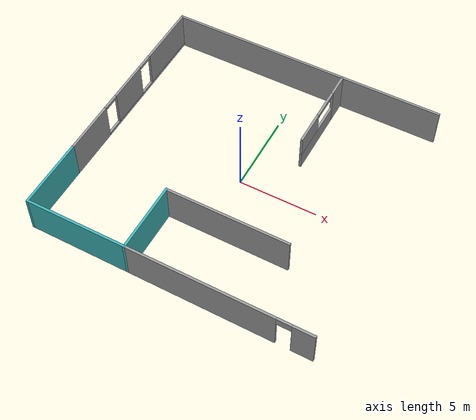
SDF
<sdf version="1.7">
 <model name="federicos_house_v2">
  <link name="Wall_12">
   <pose>3.17521 -8.42756 0 0 -0 3.14159</pose>
   <inertial>
    <mass>1</mass>
    <inertia><ixx>1</ixx><ixy>0</ixy><ixz>0</ixz><iyy>1</iyy><iyz>0</iyz><izz>1</izz></inertia>
   </inertial>
   <visual name="Wall_12_Visual_2">
    <pose>-3.94881 0 2.25 0 -0 0</pose>
    <geometry><box><size>0.9 0.15 0.5</size></box></geometry>
    <material>
     <script><uri>file://media/materials/scripts/gazebo.material</uri><name>Gazebo/Grey</name></script>
     <ambient>0.953 0.953 0.953 1</ambient>
     <shader type="pixel"><normal_map>__default__</normal_map></shader>
     <diffuse>0.7 0.7 0.7 1</diffuse>
     <specular>0.01 0.01 0.01 1</specular>
     <emissive>0 0 0 1</emissive>
    </material>
    <meta><layer>0</layer></meta>
   </visual>
   <visual name="Wall_12_Visual_1">
    <pose>1.05 0 1.25 0 -0 0</pose>
    <geometry><box><size>9.1 0.15 2.5</size></box></geometry>
    <material>
     <script><uri>file://media/materials/scripts/gazebo.material</uri><name>Gazebo/Grey</name></script>
     <ambient>0.953 0.953 0.953 1</ambient>
     <shader type="pixel"><normal_map>__default__</normal_map></shader>
     <diffuse>0.7 0.7 0.7 1</diffuse>
     <specular>0.01 0.01 0.01 1</specular>
     <emissive>0 0 0 1</emissive>
    </material>
    <meta><layer>0</layer></meta>
   </visual>
   <visual name="Wall_12_Visual_0">
    <pose>-5.0744 0 1.25 0 -0 0</pose>
    <geometry><box><size>1.35119 0.15 2.5</size></box></geometry>
    <material>
     <script><uri>file://media/materials/scripts/gazebo.material</uri><name>Gazebo/Grey</name></script>
     <ambient>0.953 0.953 0.953 1</ambient>
     <shader type="pixel"><normal_map>__default__</normal_map></shader>
     <diffuse>0.7 0.7 0.7 1</diffuse>
     <specular>0.01 0.01 0.01 1</specular>
     <emissive>0 0 0 1</emissive>
    </material>
    <meta><layer>0</layer></meta>
   </visual>
   <collision name="Wall_12_Collision_1">
    <pose>1.05 0 1.25 0 -0 0</pose>
    <geometry><box><size>9.1 0.15 2.5</size></box></geometry>
    <surface>
     <friction>
      <ode><mu>1</mu><mu2>1</mu2><fdir1>0 0 0</fdir1><slip1>0</slip1><slip2>0</slip2></ode>
      <torsional>
       <coefficient>1</coefficient>
       <patch_radius>0</patch_radius>
       <surface_radius>0</surface_radius>
       <use_patch_radius>1</use_patch_radius>
       <ode><slip>0</slip></ode>
      </torsional>
     </friction>
     <bounce><restitution_coefficient>0</restitution_coefficient><threshold>1e+06</threshold></bounce>
     <contact>
      <collide_without_contact>0</collide_without_contact>
      <collide_without_contact_bitmask>1</collide_without_contact_bitmask>
      <collide_bitmask>1</collide_bitmask>
      <ode>
       <soft_cfm>0</soft_cfm>
       <soft_erp>0.2</soft_erp>
       <kp>1e+13</kp>
       <kd>1</kd>
       <max_vel>0.01</max_vel>
       <min_depth>0</min_depth>
      </ode>
      <bullet>
       <split_impulse>1</split_impulse>
       <split_impulse_penetration_threshold>-0.01</split_impulse_penetration_threshold>
       <soft_cfm>0</soft_cfm>
       <soft_erp>0.2</soft_erp>
       <kp>1e+13</kp>
       <kd>1</kd>
      </bullet>
     </contact>
    </surface>
   </collision>
   <collision name="Wall_12_Collision_0">
    <pose>-5.0744 0 1.25 0 -0 0</pose>
    <geometry><box><size>1.35119 0.15 2.5</size></box></geometry>
    <surface>
     <friction>
      <ode><mu>1</mu><mu2>1</mu2><fdir1>0 0 0</fdir1><slip1>0</slip1><slip2>0</slip2></ode>
      <torsional>
       <coefficient>1</coefficient>
       <patch_radius>0</patch_radius>
       <surface_radius>0</surface_radius>
       <use_patch_radius>1</use_patch_radius>
       <ode><slip>0</slip></ode>
      </torsional>
     </friction>
     <bounce><restitution_coefficient>0</restitution_coefficient><threshold>1e+06</threshold></bounce>
     <contact>
      <collide_without_contact>0</collide_without_contact>
      <collide_without_contact_bitmask>1</collide_without_contact_bitmask>
      <collide_bitmask>1</collide_bitmask>
      <ode>
       <soft_cfm>0</soft_cfm>
       <soft_erp>0.2</soft_erp>
       <kp>1e+13</kp>
       <kd>1</kd>
       <max_vel>0.01</max_vel>
       <min_depth>0</min_depth>
      </ode>
      <bullet>
       <split_impulse>1</split_impulse>
       <split_impulse_penetration_threshold>-0.01</split_impulse_penetration_threshold>
       <soft_cfm>0</soft_cfm>
       <soft_erp>0.2</soft_erp>
       <kp>1e+13</kp>
       <kd>1</kd>
      </bullet>
     </contact>
    </surface>
   </collision>
   <collision name="Wall_12_Collision_2">
    <pose>-3.94881 0 2.25 0 -0 0</pose>
    <geometry><box><size>0.9 0.15 0.5</size></box></geometry>
    <surface>
     <friction>
      <ode><mu>1</mu><mu2>1</mu2><fdir1>0 0 0</fdir1><slip1>0</slip1><slip2>0</slip2></ode>
      <torsional>
       <coefficient>1</coefficient>
       <patch_radius>0</patch_radius>
       <surface_radius>0</surface_radius>
       <use_patch_radius>1</use_patch_radius>
       <ode><slip>0</slip></ode>
      </torsional>
     </friction>
     <bounce><restitution_coefficient>0</restitution_coefficient><threshold>1e+06</threshold></bounce>
     <contact>
      <collide_without_contact>0</collide_without_contact>
      <collide_without_contact_bitmask>1</collide_without_contact_bitmask>
      <collide_bitmask>1</collide_bitmask>
      <ode>
       <soft_cfm>0</soft_cfm>
       <soft_erp>0.2</soft_erp>
       <kp>1e+13</kp>
       <kd>1</kd>
       <max_vel>0.01</max_vel>
       <min_depth>0</min_depth>
      </ode>
      <bullet>
       <split_impulse>1</split_impulse>
       <split_impulse_penetration_threshold>-0.01</split_impulse_penetration_threshold>
       <soft_cfm>0</soft_cfm>
       <soft_erp>0.2</soft_erp>
       <kp>1e+13</kp>
       <kd>1</kd>
      </bullet>
     </contact>
    </surface>
   </collision>
  </link>
  <link name="Wall_13">
   <pose>-5.67479 -8.42756 0 0 -0 3.14159</pose>
   <visual name="Wall_13_Visual">
    <pose>0 0 1.25 0 -0 0</pose>
    <geometry><box><size>6.5 0.15 2.5</size></box></geometry>
    <material>
     <script><uri>file://media/materials/scripts/gazebo.material</uri><name>Gazebo/Grey</name></script>
     <ambient>0.239216 0.705882 0.713726 1</ambient>
     <shader type="pixel"/>
    </material>
    <meta><layer>0</layer></meta>
   </visual>
   <collision name="Wall_13_Collision">
    <pose>0 0 1.25 0 -0 0</pose>
    <geometry><box><size>6.5 0.15 2.5</size></box></geometry>
    <surface>
     <friction>
      <ode><mu>1</mu><mu2>1</mu2><fdir1>0 0 0</fdir1><slip1>0</slip1><slip2>0</slip2></ode>
      <torsional>
       <coefficient>1</coefficient>
       <patch_radius>0</patch_radius>
       <surface_radius>0</surface_radius>
       <use_patch_radius>1</use_patch_radius>
       <ode><slip>0</slip></ode>
      </torsional>
     </friction>
     <bounce><restitution_coefficient>0</restitution_coefficient><threshold>1e+06</threshold></bounce>
     <contact>
      <collide_without_contact>0</collide_without_contact>
      <collide_without_contact_bitmask>1</collide_without_contact_bitmask>
      <collide_bitmask>1</collide_bitmask>
      <ode>
       <soft_cfm>0</soft_cfm>
       <soft_erp>0.2</soft_erp>
       <kp>1e+13</kp>
       <kd>1</kd>
       <max_vel>0.01</max_vel>
       <min_depth>0</min_depth>
      </ode>
      <bullet>
       <split_impulse>1</split_impulse>
       <split_impulse_penetration_threshold>-0.01</split_impulse_penetration_threshold>
       <soft_cfm>0</soft_cfm>
       <soft_erp>0.2</soft_erp>
       <kp>1e+13</kp>
       <kd>1</kd>
      </bullet>
     </contact>
    </surface>
   </collision>
  </link>
  <link name="Wall_18">
   <pose>-8.84979 -6.25256 0 0 -0 1.5708</pose>
   <visual name="Wall_18_Visual">
    <pose>0 0 1.25 0 -0 0</pose>
    <geometry><box><size>4.5 0.15 2.5</size></box></geometry>
    <material>
     <script><uri>file://media/materials/scripts/gazebo.material</uri><name>Gazebo/Grey</name></script>
     <ambient>0.239216 0.705882 0.713726 1</ambient>
     <shader type="pixel"/>
    </material>
    <meta><layer>0</layer></meta>
   </visual>
   <collision name="Wall_18_Collision">
    <pose>0 0 1.25 0 -0 0</pose>
    <geometry><box><size>4.5 0.15 2.5</size></box></geometry>
    <surface>
     <friction>
      <ode><mu>1</mu><mu2>1</mu2><fdir1>0 0 0</fdir1><slip1>0</slip1><slip2>0</slip2></ode>
      <torsional>
       <coefficient>1</coefficient>
       <patch_radius>0</patch_radius>
       <surface_radius>0</surface_radius>
       <use_patch_radius>1</use_patch_radius>
       <ode><slip>0</slip></ode>
      </torsional>
     </friction>
     <bounce><restitution_coefficient>0</restitution_coefficient><threshold>1e+06</threshold></bounce>
     <contact>
      <collide_without_contact>0</collide_without_contact>
      <collide_without_contact_bitmask>1</collide_without_contact_bitmask>
      <collide_bitmask>1</collide_bitmask>
      <ode>
       <soft_cfm>0</soft_cfm>
       <soft_erp>0.2</soft_erp>
       <kp>1e+13</kp>
       <kd>1</kd>
       <max_vel>0.01</max_vel>
       <min_depth>0</min_depth>
      </ode>
      <bullet>
       <split_impulse>1</split_impulse>
       <split_impulse_penetration_threshold>-0.01</split_impulse_penetration_threshold>
       <soft_cfm>0</soft_cfm>
       <soft_erp>0.2</soft_erp>
       <kp>1e+13</kp>
       <kd>1</kd>
      </bullet>
     </contact>
    </surface>
   </collision>
  </link>
  <link name="Wall_19">
   <pose>-8.85 2.17222 0 0 -0 1.57083</pose>
   <inertial>
    <mass>1</mass>
    <inertia><ixx>1</ixx><ixy>0</ixy><ixz>0</ixz><iyy>1</iyy><iyz>0</iyz><izz>1</izz></inertia>
   </inertial>
   <visual name="Wall_19_Visual_4">
    <pose>-2.22799 0 2.4 0 -0 0</pose>
    <geometry><box><size>1.1 0.15 0.2</size></box></geometry>
    <material>
     <script><uri>file://media/materials/scripts/gazebo.material</uri><name>Gazebo/Grey</name></script>
     <ambient>0.953 0.953 0.953 1</ambient>
     <shader type="pixel"><normal_map>__default__</normal_map></shader>
     <diffuse>0.7 0.7 0.7 1</diffuse>
     <specular>0.01 0.01 0.01 1</specular>
     <emissive>0 0 0 1</emissive>
    </material>
    <meta><layer>0</layer></meta>
   </visual>
   <visual name="Wall_19_Visual_2">
    <pose>-0.320942 0 1.35 0 -0 0</pose>
    <geometry><box><size>2.71409 0.15 2.3</size></box></geometry>
    <material>
     <script><uri>file://media/materials/scripts/gazebo.material</uri><name>Gazebo/Grey</name></script>
     <ambient>0.953 0.953 0.953 1</ambient>
     <shader type="pixel"><normal_map>__default__</normal_map></shader>
     <diffuse>0.7 0.7 0.7 1</diffuse>
     <specular>0.01 0.01 0.01 1</specular>
     <emissive>0 0 0 1</emissive>
    </material>
    <meta><layer>0</layer></meta>
   </visual>
   <visual name="Wall_19_Visual_1">
    <pose>1.7734 0 0.1 0 -0 0</pose>
    <geometry><box><size>9.10277 0.15 0.2</size></box></geometry>
    <material>
     <script><uri>file://media/materials/scripts/gazebo.material</uri><name>Gazebo/Grey</name></script>
     <ambient>0.953 0.953 0.953 1</ambient>
     <shader type="pixel"><normal_map>__default__</normal_map></shader>
     <diffuse>0.7 0.7 0.7 1</diffuse>
     <specular>0.01 0.01 0.01 1</specular>
     <emissive>0 0 0 1</emissive>
    </material>
    <meta><layer>0</layer></meta>
   </visual>
   <visual name="Wall_19_Visual">
    <pose>-4.47478 0 1.25 0 -0 0</pose>
    <geometry><box><size>3.3979 0.15 2.5</size></box></geometry>
    <material>
     <script><uri>file://media/materials/scripts/gazebo.material</uri><name>Gazebo/Grey</name></script>
     <ambient>0.953 0.953 0.953 1</ambient>
     <shader type="pixel"><normal_map>__default__</normal_map></shader>
     <diffuse>0.7 0.7 0.7 1</diffuse>
     <specular>0.01 0.01 0.01 1</specular>
     <emissive>0 0 0 1</emissive>
    </material>
    <meta><layer>0</layer></meta>
   </visual>
   <visual name="Wall_19_Visual_3">
    <pose>4.23044 0 1.35 0 -0 0</pose>
    <geometry><box><size>4.18867 0.15 2.3</size></box></geometry>
    <material>
     <script><uri>file://media/materials/scripts/gazebo.material</uri><name>Gazebo/Grey</name></script>
     <ambient>0.953 0.953 0.953 1</ambient>
     <shader type="pixel"><normal_map>__default__</normal_map></shader>
     <diffuse>0.7 0.7 0.7 1</diffuse>
     <specular>0.01 0.01 0.01 1</specular>
     <emissive>0 0 0 1</emissive>
    </material>
    <meta><layer>0</layer></meta>
   </visual>
   <visual name="Wall_19_Visual_5">
    <pose>1.58611 0 2.4 0 -0 0</pose>
    <geometry><box><size>1.1 0.15 0.2</size></box></geometry>
    <material>
     <script><uri>file://media/materials/scripts/gazebo.material</uri><name>Gazebo/Grey</name></script>
     <ambient>0.953 0.953 0.953 1</ambient>
     <shader type="pixel"><normal_map>__default__</normal_map></shader>
     <diffuse>0.7 0.7 0.7 1</diffuse>
     <specular>0.01 0.01 0.01 1</specular>
     <emissive>0 0 0 1</emissive>
    </material>
    <meta><layer>0</layer></meta>
   </visual>
   <collision name="Wall_19_Collision_1">
    <pose>1.7734 0 0.1 0 -0 0</pose>
    <geometry><box><size>9.10277 0.15 0.2</size></box></geometry>
    <surface>
     <friction>
      <ode><mu>1</mu><mu2>1</mu2><fdir1>0 0 0</fdir1><slip1>0</slip1><slip2>0</slip2></ode>
      <torsional>
       <coefficient>1</coefficient>
       <patch_radius>0</patch_radius>
       <surface_radius>0</surface_radius>
       <use_patch_radius>1</use_patch_radius>
       <ode><slip>0</slip></ode>
      </torsional>
     </friction>
     <bounce><restitution_coefficient>0</restitution_coefficient><threshold>1e+06</threshold></bounce>
     <contact>
      <collide_without_contact>0</collide_without_contact>
      <collide_without_contact_bitmask>1</collide_without_contact_bitmask>
      <collide_bitmask>1</collide_bitmask>
      <ode>
       <soft_cfm>0</soft_cfm>
       <soft_erp>0.2</soft_erp>
       <kp>1e+13</kp>
       <kd>1</kd>
       <max_vel>0.01</max_vel>
       <min_depth>0</min_depth>
      </ode>
      <bullet>
       <split_impulse>1</split_impulse>
       <split_impulse_penetration_threshold>-0.01</split_impulse_penetration_threshold>
       <soft_cfm>0</soft_cfm>
       <soft_erp>0.2</soft_erp>
       <kp>1e+13</kp>
       <kd>1</kd>
      </bullet>
     </contact>
    </surface>
   </collision>
   <collision name="Wall_19_Collision_4">
    <pose>-2.22799 0 2.4 0 -0 0</pose>
    <geometry><box><size>1.1 0.15 0.2</size></box></geometry>
    <surface>
     <friction>
      <ode><mu>1</mu><mu2>1</mu2><fdir1>0 0 0</fdir1><slip1>0</slip1><slip2>0</slip2></ode>
      <torsional>
       <coefficient>1</coefficient>
       <patch_radius>0</patch_radius>
       <surface_radius>0</surface_radius>
       <use_patch_radius>1</use_patch_radius>
       <ode><slip>0</slip></ode>
      </torsional>
     </friction>
     <bounce><restitution_coefficient>0</restitution_coefficient><threshold>1e+06</threshold></bounce>
     <contact>
      <collide_without_contact>0</collide_without_contact>
      <collide_without_contact_bitmask>1</collide_without_contact_bitmask>
      <collide_bitmask>1</collide_bitmask>
      <ode>
       <soft_cfm>0</soft_cfm>
       <soft_erp>0.2</soft_erp>
       <kp>1e+13</kp>
       <kd>1</kd>
       <max_vel>0.01</max_vel>
       <min_depth>0</min_depth>
      </ode>
      <bullet>
       <split_impulse>1</split_impulse>
       <split_impulse_penetration_threshold>-0.01</split_impulse_penetration_threshold>
       <soft_cfm>0</soft_cfm>
       <soft_erp>0.2</soft_erp>
       <kp>1e+13</kp>
       <kd>1</kd>
      </bullet>
     </contact>
    </surface>
   </collision>
   <collision name="Wall_19_Collision_5">
    <pose>1.58611 0 2.4 0 -0 0</pose>
    <geometry><box><size>1.1 0.15 0.2</size></box></geometry>
    <surface>
     <friction>
      <ode><mu>1</mu><mu2>1</mu2><fdir1>0 0 0</fdir1><slip1>0</slip1><slip2>0</slip2></ode>
      <torsional>
       <coefficient>1</coefficient>
       <patch_radius>0</patch_radius>
       <surface_radius>0</surface_radius>
       <use_patch_radius>1</use_patch_radius>
       <ode><slip>0</slip></ode>
      </torsional>
     </friction>
     <bounce><restitution_coefficient>0</restitution_coefficient><threshold>1e+06</threshold></bounce>
     <contact>
      <collide_without_contact>0</collide_without_contact>
      <collide_without_contact_bitmask>1</collide_without_contact_bitmask>
      <collide_bitmask>1</collide_bitmask>
      <ode>
       <soft_cfm>0</soft_cfm>
       <soft_erp>0.2</soft_erp>
       <kp>1e+13</kp>
       <kd>1</kd>
       <max_vel>0.01</max_vel>
       <min_depth>0</min_depth>
      </ode>
      <bullet>
       <split_impulse>1</split_impulse>
       <split_impulse_penetration_threshold>-0.01</split_impulse_penetration_threshold>
       <soft_cfm>0</soft_cfm>
       <soft_erp>0.2</soft_erp>
       <kp>1e+13</kp>
       <kd>1</kd>
      </bullet>
     </contact>
    </surface>
   </collision>
   <collision name="Wall_19_Collision">
    <pose>-4.47478 0 1.25 0 -0 0</pose>
    <geometry><box><size>3.39679 0.15 2.5</size></box></geometry>
    <surface>
     <friction>
      <ode><mu>1</mu><mu2>1</mu2><fdir1>0 0 0</fdir1><slip1>0</slip1><slip2>0</slip2></ode>
      <torsional>
       <coefficient>1</coefficient>
       <patch_radius>0</patch_radius>
       <surface_radius>0</surface_radius>
       <use_patch_radius>1</use_patch_radius>
       <ode><slip>0</slip></ode>
      </torsional>
     </friction>
     <bounce><restitution_coefficient>0</restitution_coefficient><threshold>1e+06</threshold></bounce>
     <contact>
      <collide_without_contact>0</collide_without_contact>
      <collide_without_contact_bitmask>1</collide_without_contact_bitmask>
      <collide_bitmask>1</collide_bitmask>
      <ode>
       <soft_cfm>0</soft_cfm>
       <soft_erp>0.2</soft_erp>
       <kp>1e+13</kp>
       <kd>1</kd>
       <max_vel>0.01</max_vel>
       <min_depth>0</min_depth>
      </ode>
      <bullet>
       <split_impulse>1</split_impulse>
       <split_impulse_penetration_threshold>-0.01</split_impulse_penetration_threshold>
       <soft_cfm>0</soft_cfm>
       <soft_erp>0.2</soft_erp>
       <kp>1e+13</kp>
       <kd>1</kd>
      </bullet>
     </contact>
    </surface>
   </collision>
   <collision name="Wall_19_Collision_2">
    <pose>-0.320942 0 1.35 0 -0 0</pose>
    <geometry><box><size>2.71409 0.15 2.3</size></box></geometry>
    <surface>
     <friction>
      <ode><mu>1</mu><mu2>1</mu2><fdir1>0 0 0</fdir1><slip1>0</slip1><slip2>0</slip2></ode>
      <torsional>
       <coefficient>1</coefficient>
       <patch_radius>0</patch_radius>
       <surface_radius>0</surface_radius>
       <use_patch_radius>1</use_patch_radius>
       <ode><slip>0</slip></ode>
      </torsional>
     </friction>
     <bounce><restitution_coefficient>0</restitution_coefficient><threshold>1e+06</threshold></bounce>
     <contact>
      <collide_without_contact>0</collide_without_contact>
      <collide_without_contact_bitmask>1</collide_without_contact_bitmask>
      <collide_bitmask>1</collide_bitmask>
      <ode>
       <soft_cfm>0</soft_cfm>
       <soft_erp>0.2</soft_erp>
       <kp>1e+13</kp>
       <kd>1</kd>
       <max_vel>0.01</max_vel>
       <min_depth>0</min_depth>
      </ode>
      <bullet>
       <split_impulse>1</split_impulse>
       <split_impulse_penetration_threshold>-0.01</split_impulse_penetration_threshold>
       <soft_cfm>0</soft_cfm>
       <soft_erp>0.2</soft_erp>
       <kp>1e+13</kp>
       <kd>1</kd>
      </bullet>
     </contact>
    </surface>
   </collision>
   <collision name="Wall_19_Collision_3">
    <pose>4.23044 0 1.35 0 -0 0</pose>
    <geometry><box><size>4.18867 0.15 2.3</size></box></geometry>
    <surface>
     <friction>
      <ode><mu>1</mu><mu2>1</mu2><fdir1>0 0 0</fdir1><slip1>0</slip1><slip2>0</slip2></ode>
      <torsional>
       <coefficient>1</coefficient>
       <patch_radius>0</patch_radius>
       <surface_radius>0</surface_radius>
       <use_patch_radius>1</use_patch_radius>
       <ode><slip>0</slip></ode>
      </torsional>
     </friction>
     <bounce><restitution_coefficient>0</restitution_coefficient><threshold>1e+06</threshold></bounce>
     <contact>
      <collide_without_contact>0</collide_without_contact>
      <collide_without_contact_bitmask>1</collide_without_contact_bitmask>
      <collide_bitmask>1</collide_bitmask>
      <ode>
       <soft_cfm>0</soft_cfm>
       <soft_erp>0.2</soft_erp>
       <kp>1e+13</kp>
       <kd>1</kd>
       <max_vel>0.01</max_vel>
       <min_depth>0</min_depth>
      </ode>
      <bullet>
       <split_impulse>1</split_impulse>
       <split_impulse_penetration_threshold>-0.01</split_impulse_penetration_threshold>
       <soft_cfm>0</soft_cfm>
       <soft_erp>0.2</soft_erp>
       <kp>1e+13</kp>
       <kd>1</kd>
      </bullet>
     </contact>
    </surface>
   </collision>
  </link>
  <link name="Wall_20">
   <pose>-0.000205 8.422 0 0 -0 0</pose>
   <visual name="Wall_20_Visual">
    <pose>0 0 1.25 0 -0 0</pose>
    <geometry><box><size>17.85 0.15 2.5</size></box></geometry>
    <material>
     <script><uri>file://media/materials/scripts/gazebo.material</uri><name>Gazebo/Grey</name></script>
     <ambient>0.952941 0.952941 0.952941 1</ambient>
     <shader type="pixel"/>
    </material>
    <meta><layer>0</layer></meta>
   </visual>
   <collision name="Wall_20_Collision">
    <pose>0 0 1.25 0 -0 0</pose>
    <geometry><box><size>17.85 0.15 2.5</size></box></geometry>
    <surface>
     <friction>
      <ode><mu>1</mu><mu2>1</mu2><fdir1>0 0 0</fdir1><slip1>0</slip1><slip2>0</slip2></ode>
      <torsional>
       <coefficient>1</coefficient>
       <patch_radius>0</patch_radius>
       <surface_radius>0</surface_radius>
       <use_patch_radius>1</use_patch_radius>
       <ode><slip>0</slip></ode>
      </torsional>
     </friction>
     <bounce><restitution_coefficient>0</restitution_coefficient><threshold>1e+06</threshold></bounce>
     <contact>
      <collide_without_contact>0</collide_without_contact>
      <collide_without_contact_bitmask>1</collide_without_contact_bitmask>
      <collide_bitmask>1</collide_bitmask>
      <ode>
       <soft_cfm>0</soft_cfm>
       <soft_erp>0.2</soft_erp>
       <kp>1e+13</kp>
       <kd>1</kd>
       <max_vel>0.01</max_vel>
       <min_depth>0</min_depth>
      </ode>
      <bullet>
       <split_impulse>1</split_impulse>
       <split_impulse_penetration_threshold>-0.01</split_impulse_penetration_threshold>
       <soft_cfm>0</soft_cfm>
       <soft_erp>0.2</soft_erp>
       <kp>1e+13</kp>
       <kd>1</kd>
      </bullet>
     </contact>
    </surface>
   </collision>
  </link>
  <link name="Wall_22">
   <pose>-2.5 -6.25278 0 0 -0 1.57089</pose>
   <visual name="Wall_22_Visual">
    <pose>0 0 1.25 0 -0 0</pose>
    <geometry><box><size>4.5 0.15 2.5</size></box></geometry>
    <material>
     <script><uri>file://media/materials/scripts/gazebo.material</uri><name>Gazebo/Grey</name></script>
     <ambient>0.239216 0.705882 0.713726 1</ambient>
     <shader type="pixel"/>
    </material>
    <meta><layer>0</layer></meta>
   </visual>
   <collision name="Wall_22_Collision">
    <pose>0 0 1.25 0 -0 0</pose>
    <geometry><box><size>4.5 0.15 2.5</size></box></geometry>
    <surface>
     <friction>
      <ode><mu>1</mu><mu2>1</mu2><fdir1>0 0 0</fdir1><slip1>0</slip1><slip2>0</slip2></ode>
      <torsional>
       <coefficient>1</coefficient>
       <patch_radius>0</patch_radius>
       <surface_radius>0</surface_radius>
       <use_patch_radius>1</use_patch_radius>
       <ode><slip>0</slip></ode>
      </torsional>
     </friction>
     <bounce><restitution_coefficient>0</restitution_coefficient><threshold>1e+06</threshold></bounce>
     <contact>
      <collide_without_contact>0</collide_without_contact>
      <collide_without_contact_bitmask>1</collide_without_contact_bitmask>
      <collide_bitmask>1</collide_bitmask>
      <ode>
       <soft_cfm>0</soft_cfm>
       <soft_erp>0.2</soft_erp>
       <kp>1e+13</kp>
       <kd>1</kd>
       <max_vel>0.01</max_vel>
       <min_depth>0</min_depth>
      </ode>
      <bullet>
       <split_impulse>1</split_impulse>
       <split_impulse_penetration_threshold>-0.01</split_impulse_penetration_threshold>
       <soft_cfm>0</soft_cfm>
       <soft_erp>0.2</soft_erp>
       <kp>1e+13</kp>
       <kd>1</kd>
      </bullet>
     </contact>
    </surface>
   </collision>
  </link>
  <link name="Wall_24">
   <pose>1.4248 -4.078 0 0 -0 0</pose>
   <inertial>
    <mass>1</mass>
    <inertia><ixx>1</ixx><ixy>0</ixy><ixz>0</ixz><iyy>1</iyy><iyz>0</iyz><izz>1</izz></inertia>
   </inertial>
   <visual name="Wall_24_Visual">
    <pose>0 0 1.25 0 -0 0</pose>
    <geometry><box><size>7.7 0.15 2.5</size></box></geometry>
    <material>
     <script><uri>file://media/materials/scripts/gazebo.material</uri><name>Gazebo/Grey</name></script>
     <ambient>0.953 0.953 0.953 1</ambient>
     <shader type="pixel"><normal_map>__default__</normal_map></shader>
     <diffuse>0.7 0.7 0.7 1</diffuse>
     <specular>0.01 0.01 0.01 1</specular>
     <emissive>0 0 0 1</emissive>
    </material>
    <meta><layer>0</layer></meta>
   </visual>
   <collision name="Wall_24_Collision">
    <pose>0 0 1.25 0 -0 0</pose>
    <geometry><box><size>7.7 0.15 2.5</size></box></geometry>
    <surface>
     <friction>
      <ode><mu>1</mu><mu2>1</mu2><fdir1>0 0 0</fdir1><slip1>0</slip1><slip2>0</slip2></ode>
      <torsional>
       <coefficient>1</coefficient>
       <patch_radius>0</patch_radius>
       <surface_radius>0</surface_radius>
       <use_patch_radius>1</use_patch_radius>
       <ode><slip>0</slip></ode>
      </torsional>
     </friction>
     <bounce><restitution_coefficient>0</restitution_coefficient><threshold>1e+06</threshold></bounce>
     <contact>
      <collide_without_contact>0</collide_without_contact>
      <collide_without_contact_bitmask>1</collide_without_contact_bitmask>
      <collide_bitmask>1</collide_bitmask>
      <ode>
       <soft_cfm>0</soft_cfm>
       <soft_erp>0.2</soft_erp>
       <kp>1e+13</kp>
       <kd>1</kd>
       <max_vel>0.01</max_vel>
       <min_depth>0</min_depth>
      </ode>
      <bullet>
       <split_impulse>1</split_impulse>
       <split_impulse_penetration_threshold>-0.01</split_impulse_penetration_threshold>
       <soft_cfm>0</soft_cfm>
       <soft_erp>0.2</soft_erp>
       <kp>1e+13</kp>
       <kd>1</kd>
      </bullet>
     </contact>
    </surface>
   </collision>
  </link>
  <link name="Wall_29">
   <pose>2.5698 5.628 0 0 0 -1.5708</pose>
   <visual name="Wall_29_Visual_1">
    <pose>0.7815 0 0.575 0 -0 0</pose>
    <geometry><box><size>4.187 0.15 1.15</size></box></geometry>
    <material>
     <script><uri>file://media/materials/scripts/gazebo.material</uri><name>Gazebo/Grey</name></script>
     <ambient>0.952941 0.952941 0.952941 1</ambient>
     <shader type="pixel"/>
    </material>
    <meta><layer>0</layer></meta>
   </visual>
   <visual name="Wall_29_Visual_2">
    <pose>1.7815 0 1.825 0 -0 0</pose>
    <geometry><box><size>2.187 0.15 1.35</size></box></geometry>
    <material>
     <script><uri>file://media/materials/scripts/gazebo.material</uri><name>Gazebo/Grey</name></script>
     <ambient>0.952941 0.952941 0.952941 1</ambient>
     <shader type="pixel"/>
    </material>
    <meta><layer>0</layer></meta>
   </visual>
   <visual name="Wall_29_Visual_0">
    <pose>-2.0935 0 1.25 0 -0 0</pose>
    <geometry><box><size>1.563 0.15 2.5</size></box></geometry>
    <material>
     <script><uri>file://media/materials/scripts/gazebo.material</uri><name>Gazebo/Grey</name></script>
     <ambient>0.952941 0.952941 0.952941 1</ambient>
     <shader type="pixel"/>
    </material>
    <meta><layer>0</layer></meta>
   </visual>
   <visual name="Wall_29_Visual_3">
    <pose>-0.312 0 2.375 0 -0 0</pose>
    <geometry><box><size>2 0.15 0.25</size></box></geometry>
    <material>
     <script><uri>file://media/materials/scripts/gazebo.material</uri><name>Gazebo/Grey</name></script>
     <ambient>0.952941 0.952941 0.952941 1</ambient>
     <shader type="pixel"/>
    </material>
    <meta><layer>0</layer></meta>
   </visual>
   <collision name="Wall_29_Collision_1">
    <pose>0.7815 0 0.575 0 -0 0</pose>
    <geometry><box><size>4.187 0.15 1.15</size></box></geometry>
    <surface>
     <friction>
      <ode><mu>1</mu><mu2>1</mu2><fdir1>0 0 0</fdir1><slip1>0</slip1><slip2>0</slip2></ode>
      <torsional>
       <coefficient>1</coefficient>
       <patch_radius>0</patch_radius>
       <surface_radius>0</surface_radius>
       <use_patch_radius>1</use_patch_radius>
       <ode><slip>0</slip></ode>
      </torsional>
     </friction>
     <bounce><restitution_coefficient>0</restitution_coefficient><threshold>1e+06</threshold></bounce>
     <contact>
      <collide_without_contact>0</collide_without_contact>
      <collide_without_contact_bitmask>1</collide_without_contact_bitmask>
      <collide_bitmask>1</collide_bitmask>
      <ode>
       <soft_cfm>0</soft_cfm>
       <soft_erp>0.2</soft_erp>
       <kp>1e+13</kp>
       <kd>1</kd>
       <max_vel>0.01</max_vel>
       <min_depth>0</min_depth>
      </ode>
      <bullet>
       <split_impulse>1</split_impulse>
       <split_impulse_penetration_threshold>-0.01</split_impulse_penetration_threshold>
       <soft_cfm>0</soft_cfm>
       <soft_erp>0.2</soft_erp>
       <kp>1e+13</kp>
       <kd>1</kd>
      </bullet>
     </contact>
    </surface>
   </collision>
   <collision name="Wall_29_Collision_0">
    <pose>-2.0935 0 1.25 0 -0 0</pose>
    <geometry><box><size>1.563 0.15 2.5</size></box></geometry>
    <surface>
     <friction>
      <ode><mu>1</mu><mu2>1</mu2><fdir1>0 0 0</fdir1><slip1>0</slip1><slip2>0</slip2></ode>
      <torsional>
       <coefficient>1</coefficient>
       <patch_radius>0</patch_radius>
       <surface_radius>0</surface_radius>
       <use_patch_radius>1</use_patch_radius>
       <ode><slip>0</slip></ode>
      </torsional>
     </friction>
     <bounce><restitution_coefficient>0</restitution_coefficient><threshold>1e+06</threshold></bounce>
     <contact>
      <collide_without_contact>0</collide_without_contact>
      <collide_without_contact_bitmask>1</collide_without_contact_bitmask>
      <collide_bitmask>1</collide_bitmask>
      <ode>
       <soft_cfm>0</soft_cfm>
       <soft_erp>0.2</soft_erp>
       <kp>1e+13</kp>
       <kd>1</kd>
       <max_vel>0.01</max_vel>
       <min_depth>0</min_depth>
      </ode>
      <bullet>
       <split_impulse>1</split_impulse>
       <split_impulse_penetration_threshold>-0.01</split_impulse_penetration_threshold>
       <soft_cfm>0</soft_cfm>
       <soft_erp>0.2</soft_erp>
       <kp>1e+13</kp>
       <kd>1</kd>
      </bullet>
     </contact>
    </surface>
   </collision>
   <collision name="Wall_29_Collision_2">
    <pose>1.7815 0 1.825 0 -0 0</pose>
    <geometry><box><size>2.187 0.15 1.35</size></box></geometry>
    <surface>
     <friction>
      <ode><mu>1</mu><mu2>1</mu2><fdir1>0 0 0</fdir1><slip1>0</slip1><slip2>0</slip2></ode>
      <torsional>
       <coefficient>1</coefficient>
       <patch_radius>0</patch_radius>
       <surface_radius>0</surface_radius>
       <use_patch_radius>1</use_patch_radius>
       <ode><slip>0</slip></ode>
      </torsional>
     </friction>
     <bounce><restitution_coefficient>0</restitution_coefficient><threshold>1e+06</threshold></bounce>
     <contact>
      <collide_without_contact>0</collide_without_contact>
      <collide_without_contact_bitmask>1</collide_without_contact_bitmask>
      <collide_bitmask>1</collide_bitmask>
      <ode>
       <soft_cfm>0</soft_cfm>
       <soft_erp>0.2</soft_erp>
       <kp>1e+13</kp>
       <kd>1</kd>
       <max_vel>0.01</max_vel>
       <min_depth>0</min_depth>
      </ode>
      <bullet>
       <split_impulse>1</split_impulse>
       <split_impulse_penetration_threshold>-0.01</split_impulse_penetration_threshold>
       <soft_cfm>0</soft_cfm>
       <soft_erp>0.2</soft_erp>
       <kp>1e+13</kp>
       <kd>1</kd>
      </bullet>
     </contact>
    </surface>
   </collision>
   <collision name="Wall_29_Collision_3">
    <pose>-0.312 0 2.375 0 -0 0</pose>
    <geometry><box><size>2 0.15 0.25</size></box></geometry>
    <surface>
     <friction>
      <ode><mu>1</mu><mu2>1</mu2><fdir1>0 0 0</fdir1><slip1>0</slip1><slip2>0</slip2></ode>
      <torsional>
       <coefficient>1</coefficient>
       <patch_radius>0</patch_radius>
       <surface_radius>0</surface_radius>
       <use_patch_radius>1</use_patch_radius>
       <ode><slip>0</slip></ode>
      </torsional>
     </friction>
     <bounce><restitution_coefficient>0</restitution_coefficient><threshold>1e+06</threshold></bounce>
     <contact>
      <collide_without_contact>0</collide_without_contact>
      <collide_without_contact_bitmask>1</collide_without_contact_bitmask>
      <collide_bitmask>1</collide_bitmask>
      <ode>
       <soft_cfm>0</soft_cfm>
       <soft_erp>0.2</soft_erp>
       <kp>1e+13</kp>
       <kd>1</kd>
       <max_vel>0.01</max_vel>
       <min_depth>0</min_depth>
      </ode>
      <bullet>
       <split_impulse>1</split_impulse>
       <split_impulse_penetration_threshold>-0.01</split_impulse_penetration_threshold>
       <soft_cfm>0</soft_cfm>
       <soft_erp>0.2</soft_erp>
       <kp>1e+13</kp>
       <kd>1</kd>
      </bullet>
     </contact>
    </surface>
   </collision>
  </link>
  <static>1</static>
 </model>
</sdf>
